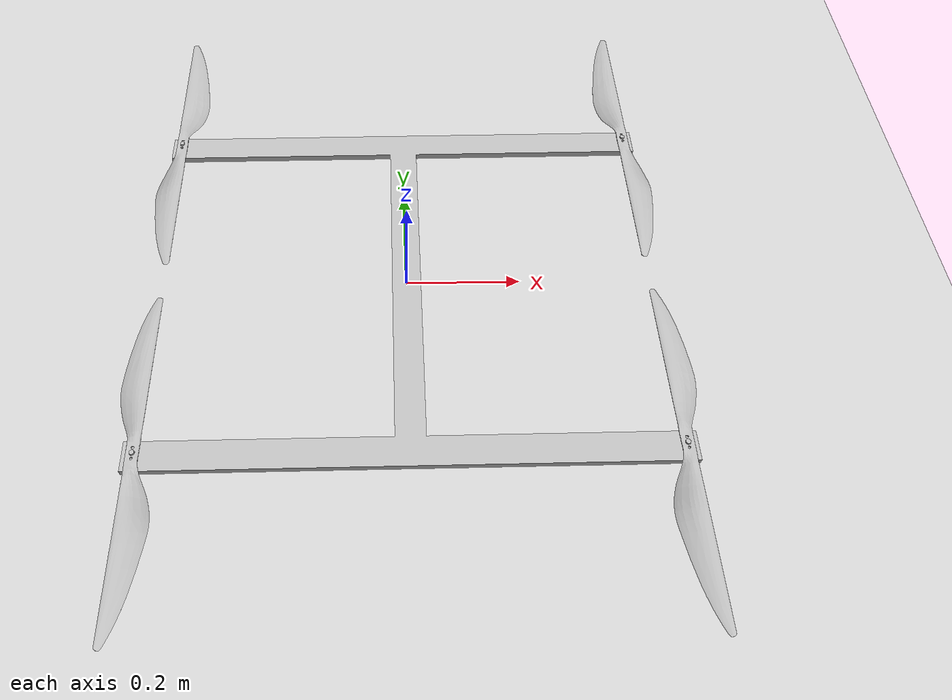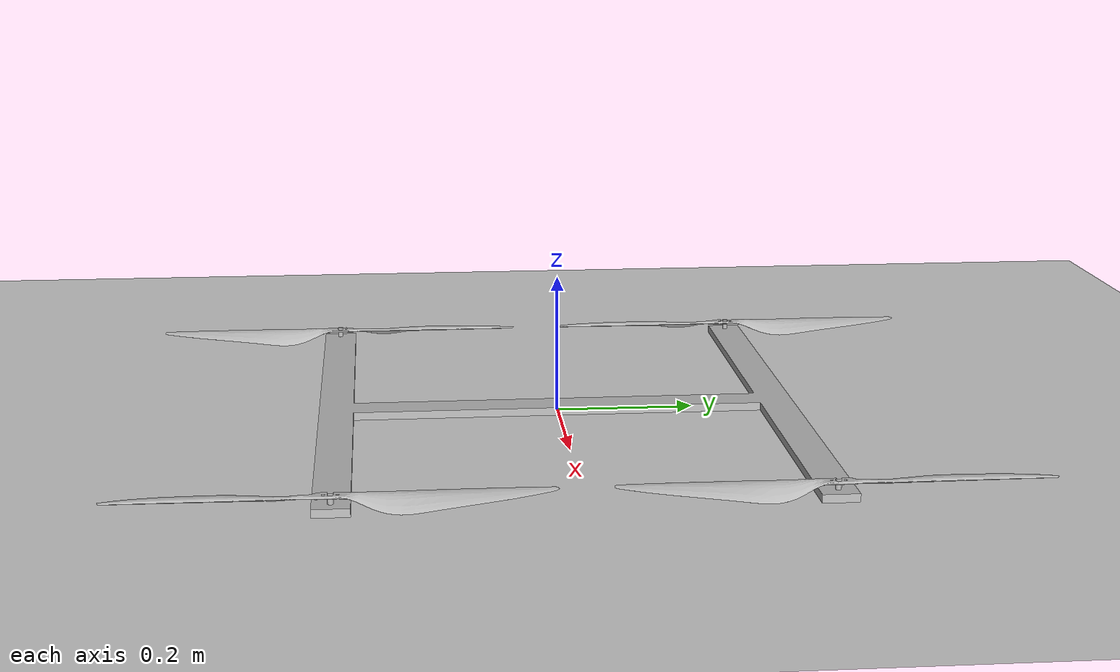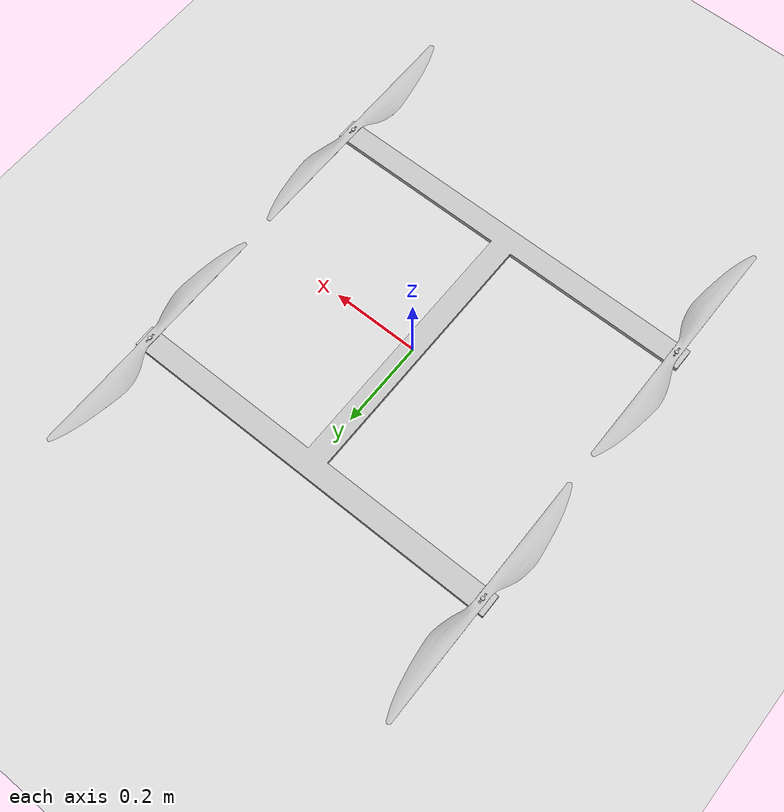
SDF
<?xml version="1.0" ?>
<sdf version="1.6">
  <world name="default">
    <gui>
      <camera name="user_camera">
        <pose>-5 0 1 0 0.2 0</pose>
      </camera>
    </gui>
    <physics type="ode">
      <ode>
        <solver>
          <type>quick</type>
          <iters>100</iters>
          <sor>1.0</sor>
        </solver>
        <constraints>
          <cfm>0.0</cfm>
          <erp>0.2</erp>
          <contact_max_correcting_vel>0.1</contact_max_correcting_vel>
          <contact_surface_layer>0.0</contact_surface_layer>
        </constraints>
      </ode>
      <real_time_update_rate>-1</real_time_update_rate>
    </physics>
    <gravity>0 0 -9.8</gravity>
    <include>
      <uri>model://sun</uri>
    </include>

    <model name="ground_plane">
      <static>true</static>
      <link name="link">
        <collision name="collision">
          <geometry>
            <plane>
              <normal>0 0 1</normal>
              <size>5000 5000</size>
            </plane>
          </geometry>
          <surface>
            <friction>
              <ode>
                <mu>100</mu>
                <mu2>50</mu2>
              </ode>
            </friction>
          </surface>
        </collision>
        <visual name="runway">
          <pose>000 0 0.005 0 0 0</pose>
          <cast_shadows>false</cast_shadows>
          <geometry>
            <plane>
              <normal>0 0 1</normal>
              <size>1829 45</size>
            </plane>
          </geometry>
          <material>
            <script>
              <uri>file://media/materials/scripts/gazebo.material</uri>
              <name>Gazebo/Runway</name>
            </script>
          </material>
        </visual>

      </link>
    </model>

    <model name="h_frame">
      <include>
        <uri>model://h_frame_2</uri>
      </include>
    </model>
  </world>
</sdf>

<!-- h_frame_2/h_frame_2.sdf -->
<sdf version='1.6'>
  <model name='h_frame_2'>
    <link name='base_link'>
     <velocity_decay>
        <linear>0.0</linear>
        <angular>0.0</angular>
      </velocity_decay>
      <pose frame=''>0 0 0 0 -0 0</pose>
      <inertial>
        <pose frame=''>0 -0 2.2e-05 0 -0 0</pose>
        <mass>1.3457</mass>
        <inertia>
          <ixx>0.11698</ixx>
          <ixy>1.7047e-19</ixy>
          <ixz>2.9273e-18</ixz>
          <iyy>0.068468</iyy>
          <iyz>4.8359e-19</iyz>
          <izz>0.18536</izz>
        </inertia>
      </inertial>
      <collision name='base_link_collision'>
        <pose frame=''>0 0 0 0 -0 0</pose>
        <geometry>
          <mesh>
            <scale>1 1 1</scale>
            <uri>model://h_frame_2/meshes/base_link.STL</uri>
          </mesh>
        </geometry>
      </collision>
      <visual name='base_link_visual'>
        <pose frame=''>0 0 0 0 -0 0</pose>
        <geometry>
          <mesh>
            <scale>1 1 1</scale>
            <uri>model://h_frame_2/meshes/base_link.STL</uri>
          </mesh>
        </geometry>
      </visual>
    </link>
    <link name='h_frame_2/imu_link'>
      <inertial>
        <pose>0 0 0 0 0 0</pose>
        <mass>0.15</mass>
        <inertia>
          <ixx>0.00001</ixx>
          <ixy>0</ixy>
          <ixz>0</ixz>
          <iyy>0.00002</iyy>
          <iyz>0</iyz>
          <izz>0.00002</izz>
        </inertia>
      </inertial>
      <sensor name="imu_sensor" type="imu">
        <pose>0 0 0 3.141593 0 0</pose>
        <always_on>1</always_on>
        <update_rate>1000.0</update_rate>
      </sensor>
    </link>
    <joint name='h_frame_2/imu_joint' type='revolute'>
      <child>h_frame_2/imu_link</child>
      <parent>base_link</parent>
      <axis>
        <xyz>0 0 1</xyz>
        <limit>
          <lower>0</lower>
          <upper>0</upper>
          <effort>0</effort>
          <velocity>0</velocity>
        </limit>
        <dynamics>
          <damping>1.0</damping>
        </dynamics>
        <use_parent_model_frame>1</use_parent_model_frame>
      </axis>
      <physics>
        <ode>
          <implicit_spring_damper>1</implicit_spring_damper>
        </ode>
      </physics>
    </joint>
    <link name='rotor_0'>
      <pose frame=''>0.43 -0.325 0.003413 0 0 0</pose>
      <inertial>
        <pose frame=''>0 0 0.015147 0 -0 0</pose>
        <mass>0.067291</mass>
        <inertia>
          <ixx>0.0014425</ixx>
          <ixy>-6.2329e-05</ixy>
          <ixz>-1.1867e-12</ixz>
          <iyy>1.1314e-05</iyy>
          <iyz>-8.6607e-13</iyz>
          <izz>0.0014525</izz>
        </inertia>
      </inertial>
      <collision name='rotor_0_collision'>
        <pose frame=''>0 0 0 0 -0 0</pose>
        <geometry>
          <mesh>
            <scale>1 1 1</scale>
            <uri>model://h_frame_2/meshes/rotor_0.STL</uri>
          </mesh>
        </geometry>
      </collision>
      <visual name='rotor_0_visual'>
        <pose frame=''>0 0 0 0 -0 0</pose>
        <geometry>
          <mesh>
            <scale>1 1 1</scale>
            <uri>model://h_frame_2/meshes/rotor_0.STL</uri>
          </mesh>
        </geometry>
      </visual>
      <gravity>1</gravity>
      <velocity_decay/>
      <self_collide>0</self_collide>
    </link>
    <joint name='rotor_0_joint' type='revolute'>
      <child>rotor_0</child>
      <parent>base_link</parent>
      <axis>
        <xyz>0 0 1</xyz>
        <limit>
          <lower>-1e+16</lower>
          <upper>1e+16</upper>
        </limit>
        <dynamics>
          <spring_reference>0</spring_reference>
          <spring_stiffness>0</spring_stiffness>
        </dynamics>
        <use_parent_model_frame>1</use_parent_model_frame>
      </axis>
    </joint>
    <link name='rotor_1'>
      <pose frame=''>-0.43 0.325 0.003413 0 -0 0</pose>
      <inertial>
        <pose frame=''>-0 -0 0.015147 0 -0 0</pose>
        <mass>0.067291</mass>
        <inertia>
          <ixx>0.0014425</ixx>
          <ixy>-6.2329e-05</ixy>
          <ixz>1.1866e-12</ixz>
          <iyy>1.1314e-05</iyy>
          <iyz>9.1224e-13</iyz>
          <izz>0.0014525</izz>
        </inertia>
      </inertial>
      <collision name='rotor_1_collision'>
        <pose frame=''>0 0 0 0 -0 0</pose>
        <geometry>
          <mesh>
            <scale>1 1 1</scale>
            <uri>model://h_frame_2/meshes/rotor_1.STL</uri>
          </mesh>
        </geometry>
      </collision>
      <visual name='rotor_1_visual'>
        <pose frame=''>0 0 0 0 -0 0</pose>
        <geometry>
          <mesh>
            <scale>1 1 1</scale>
            <uri>model://h_frame_2/meshes/rotor_1.STL</uri>
          </mesh>
        </geometry>
      </visual>
      <gravity>1</gravity>
      <velocity_decay/>
      <self_collide>0</self_collide>
    </link>
    <joint name='rotor_1_joint' type='revolute'>
      <child>rotor_1</child>
      <parent>base_link</parent>
      <axis>
        <xyz>0 0 1</xyz>
        <limit>
          <lower>-1e+16</lower>
          <upper>1e+16</upper>
        </limit>
        <dynamics>
          <spring_reference>0</spring_reference>
          <spring_stiffness>0</spring_stiffness>
        </dynamics>
        <use_parent_model_frame>1</use_parent_model_frame>
      </axis>
    </joint>
    <link name='rotor_2'>
      <pose frame=''>0.43 0.325 0.003413 0 0 0</pose>
      <inertial>
        <pose frame=''>-0 0 0.015147 0 -0 0</pose>
        <mass>0.067296</mass>
        <inertia>
          <ixx>0.0014427</ixx>
          <ixy>6.2333e-05</ixy>
          <ixz>1.2405e-12</ixz>
          <iyy>1.1315e-05</iyy>
          <iyz>-8.5659e-13</iyz>
          <izz>0.0014526</izz>
        </inertia>
      </inertial>
      <collision name='rotor_2_collision'>
        <pose frame=''>0 0 0 0 -0 0</pose>
        <geometry>
          <mesh>
            <scale>1 1 1</scale>
            <uri>model://h_frame_2/meshes/rotor_2.STL</uri>
          </mesh>
        </geometry>
      </collision>
      <visual name='rotor_2_visual'>
        <pose frame=''>0 0 0 0 -0 0</pose>
        <geometry>
          <mesh>
            <scale>1 1 1</scale>
            <uri>model://h_frame_2/meshes/rotor_2.STL</uri>
          </mesh>
        </geometry>
      </visual>
      <gravity>1</gravity>
      <velocity_decay/>
      <self_collide>0</self_collide>
    </link>
    <joint name='rotor_2_joint' type='revolute'>
      <child>rotor_2</child>
      <parent>base_link</parent>
      <axis>
        <xyz>0 0 1</xyz>
        <limit>
          <lower>-1e+16</lower>
          <upper>1e+16</upper>
        </limit>
        <dynamics>
          <spring_reference>0</spring_reference>
          <spring_stiffness>0</spring_stiffness>
        </dynamics>
        <use_parent_model_frame>1</use_parent_model_frame>
      </axis>
    </joint>
    <link name='rotor_3'>
      <pose frame=''>-0.43 -0.325 0.003413 0 0 0</pose>
      <inertial>
        <pose frame=''>-0 0 0.015147 0 -0 0</pose>
        <mass>0.067296</mass>
        <inertia>
          <ixx>0.0014427</ixx>
          <ixy>6.2333e-05</ixy>
          <ixz>1.2373e-12</ixz>
          <iyy>1.1315e-05</iyy>
          <iyz>-1.0807e-12</iyz>
          <izz>0.0014526</izz>
        </inertia>
      </inertial>
      <collision name='rotor_3_collision'>
        <pose frame=''>0 0 0 0 -0 0</pose>
        <geometry>
          <mesh>
            <scale>1 1 1</scale>
            <uri>model://h_frame_2/meshes/rotor_3.STL</uri>
          </mesh>
        </geometry>
      </collision>
      <visual name='rotor_3_visual'>
        <pose frame=''>0 0 0 0 -0 0</pose>
        <geometry>
          <mesh>
            <scale>1 1 1</scale>
            <uri>model://h_frame_2/meshes/rotor_3.STL</uri>
          </mesh>
        </geometry>
      </visual>
      <gravity>1</gravity>
      <velocity_decay/>
      <self_collide>0</self_collide>
    </link>
    <joint name='rotor_3_joint' type='revolute'>
      <child>rotor_3</child>
      <parent>base_link</parent>
      <axis>
        <xyz>0 0 1</xyz>
        <limit>
          <lower>-1e+16</lower>
          <upper>1e+16</upper>
        </limit>
        <dynamics>
          <spring_reference>0</spring_reference>
          <spring_stiffness>0</spring_stiffness>
        </dynamics>
        <use_parent_model_frame>1</use_parent_model_frame>
      </axis>
    </joint>
<plugin name="rotor_0_blade_1" filename="libLiftDragPlugin.so">
      <a0>0.3</a0>
      <alpha_stall>1.4</alpha_stall>
      <cla>4.2500</cla>
      <cda>0.10</cda>
      <cma>0.00</cma>
      <cla_stall>-0.025</cla_stall>
      <cda_stall>0.0</cda_stall>
      <cma_stall>0.0</cma_stall>
      <area>0.01</area>
      <air_density>1.2041</air_density>
      <cp>0  0.093 0</cp>
      <forward>-1 0 0</forward>
      <upward>0 0 1</upward>
      <link_name>rotor_0</link_name>
    </plugin>
    <plugin name="rotor_0_blade_2" filename="libLiftDragPlugin.so">
      <a0>0.3</a0>
      <alpha_stall>1.4</alpha_stall>
      <cla>4.2500</cla>
      <cda>0.10</cda>
      <cma>0.00</cma>
      <cla_stall>-0.025</cla_stall>
      <cda_stall>0.0</cda_stall>
      <cma_stall>0.0</cma_stall>
      <area>0.01</area>
      <air_density>1.2041</air_density>
       <cp>0 -0.093 0</cp>
      <forward>1 0 0</forward>
      <upward>0 0 1</upward>
      <link_name>rotor_0</link_name>
    </plugin>
 <plugin name="rotor_1_blade_1" filename="libLiftDragPlugin.so">
      <a0>0.3</a0>
      <alpha_stall>1.4</alpha_stall>
      <cla>4.2500</cla>
      <cda>0.10</cda>
      <cma>0.00</cma>
      <cla_stall>-0.025</cla_stall>
      <cda_stall>0.0</cda_stall>
      <cma_stall>0.0</cma_stall>
      <area>0.01</area>
      <air_density>1.2041</air_density>
       <cp>0 0.093 0</cp>
      <forward>-1 0 0</forward>
      <upward>0 0 1</upward>
      <link_name>rotor_1</link_name>
    </plugin>
    <plugin name="rotor_1_blade_2" filename="libLiftDragPlugin.so">
      <a0>0.3</a0>
      <alpha_stall>1.4</alpha_stall>
      <cla>4.2500</cla>
      <cda>0.10</cda>
      <cma>0.00</cma>
      <cla_stall>-0.025</cla_stall>
      <cda_stall>0.0</cda_stall>
      <cma_stall>0.0</cma_stall>
      <area>0.01</area>
      <air_density>1.2041</air_density>
      <cp>0  -0.093 0</cp>
      <forward>1 0 0</forward>
      <upward>0 0 1</upward>
      <link_name>rotor_1</link_name>
    </plugin>
<plugin name="rotor_2_blade_1" filename="libLiftDragPlugin.so">
      <a0>0.3</a0>
      <alpha_stall>1.4</alpha_stall>
      <cla>4.2500</cla>
      <cda>0.10</cda>
      <cma>0.00</cma>
      <cla_stall>-0.025</cla_stall>
      <cda_stall>0.0</cda_stall>
      <cma_stall>0.0</cma_stall>
      <area>0.01</area>
      <air_density>1.2041</air_density>
      <cp>0  0.093 0</cp>
      <forward>1 0 0</forward>
      <upward>0 0 1</upward>
      <link_name>rotor_2</link_name>
    </plugin>
    <plugin name="rotor_2_blade_2" filename="libLiftDragPlugin.so">
      <a0>0.3</a0>
      <alpha_stall>1.4</alpha_stall>
      <cla>4.2500</cla>
      <cda>0.10</cda>
      <cma>0.00</cma>
      <cla_stall>-0.025</cla_stall>
      <cda_stall>0.0</cda_stall>
      <cma_stall>0.0</cma_stall>
      <area>0.01</area>
      <air_density>1.2041</air_density>
       <cp>0 -0.093 0</cp>
      <forward>-1 0 0</forward>
      <upward>0 0 1</upward>
      <link_name>rotor_2</link_name>
    </plugin>
<plugin name="rotor_3_blade_1" filename="libLiftDragPlugin.so">
      <a0>0.3</a0>
      <alpha_stall>1.4</alpha_stall>
      <cla>4.2500</cla>
      <cda>0.10</cda>
      <cma>0.00</cma>
      <cla_stall>-0.025</cla_stall>
      <cda_stall>0.0</cda_stall>
      <cma_stall>0.0</cma_stall>
      <area>0.01</area>
      <air_density>1.2041</air_density>
      <cp>0  0.093 0</cp>
      <forward>1 0 0</forward>
      <upward>0 0 1</upward>
      <link_name>rotor_3</link_name>
    </plugin>
    <plugin name="rotor_3_blade_2" filename="libLiftDragPlugin.so">
      <a0>0.3</a0>
      <alpha_stall>1.4</alpha_stall>
      <cla>4.2500</cla>
      <cda>0.10</cda>
      <cma>0.00</cma>
      <cla_stall>-0.025</cla_stall>
      <cda_stall>0.0</cda_stall>
      <cma_stall>0.0</cma_stall>
      <area>0.01</area>
      <air_density>1.2041</air_density>
       <cp>0 -0.093 0</cp>
      <forward>-1 0 0</forward>
      <upward>0 0 1</upward>
      <link_name>rotor_3</link_name>
    </plugin>
 <plugin name="arducopter_plugin" filename="libArduPilotPlugin.so">
      <fdm_addr>127.0.0.1</fdm_addr>
      <fdm_port_in>9002</fdm_port_in>
      <fdm_port_out>9003</fdm_port_out>
      <!--
          Require by APM :
          Only change model and gazebo from XYZ to XY-Z coordinates
      -->
      <modelXYZToAirplaneXForwardZDown>0 0 0 3.141593 0 0</modelXYZToAirplaneXForwardZDown>
      <gazeboXYZToNED>0 0 0 3.141593 0 0</gazeboXYZToNED>
      <imuName>h_frame_2/imu_link::imu_sensor</imuName>
      <connectionTimeoutMaxCount>5</connectionTimeoutMaxCount>
      <control channel="0">
        <type>VELOCITY</type>
        <offset>0</offset>
        <p_gain>0.20</p_gain>
        <i_gain>0</i_gain>
        <d_gain>0</d_gain>
        <i_max>0</i_max>
        <i_min>0</i_min>
        <cmd_max>2.5</cmd_max>
        <cmd_min>-2.5</cmd_min>
        <jointName>rotor_0_joint</jointName>
        <multiplier>838</multiplier>
        <controlVelocitySlowdownSim>1</controlVelocitySlowdownSim>
      </control>
      <control channel="1">
        <type>VELOCITY</type>
        <offset>0</offset>
        <p_gain>0.20</p_gain>
        <i_gain>0</i_gain>
        <d_gain>0</d_gain>
        <i_max>0</i_max>
        <i_min>0</i_min>
        <cmd_max>2.5</cmd_max>
        <cmd_min>-2.5</cmd_min>
        <jointName>rotor_1_joint</jointName>
        <multiplier>838</multiplier>
        <controlVelocitySlowdownSim>1</controlVelocitySlowdownSim>
      </control>
      <control channel="2">
        <type>VELOCITY</type>
        <offset>0</offset>
        <p_gain>0.20</p_gain>
        <i_gain>0</i_gain>
        <d_gain>0</d_gain>
        <i_max>0</i_max>
        <i_min>0</i_min>
        <cmd_max>2.5</cmd_max>
        <cmd_min>-2.5</cmd_min>
        <jointName>rotor_2_joint</jointName>
        <multiplier>-838</multiplier>
        <controlVelocitySlowdownSim>1</controlVelocitySlowdownSim>
      </control>
      <control channel="3">
        <type>VELOCITY</type>
        <offset>0</offset>
        <p_gain>0.20</p_gain>
        <i_gain>0</i_gain>
        <d_gain>0</d_gain>
        <i_max>0</i_max>
        <i_min>0</i_min>
        <cmd_max>2.5</cmd_max>
        <cmd_min>-2.5</cmd_min>
        <jointName>rotor_3_joint</jointName>
        <multiplier>-838</multiplier>
        <controlVelocitySlowdownSim>1</controlVelocitySlowdownSim>
      </control>
    </plugin>

  </model>
</sdf>
